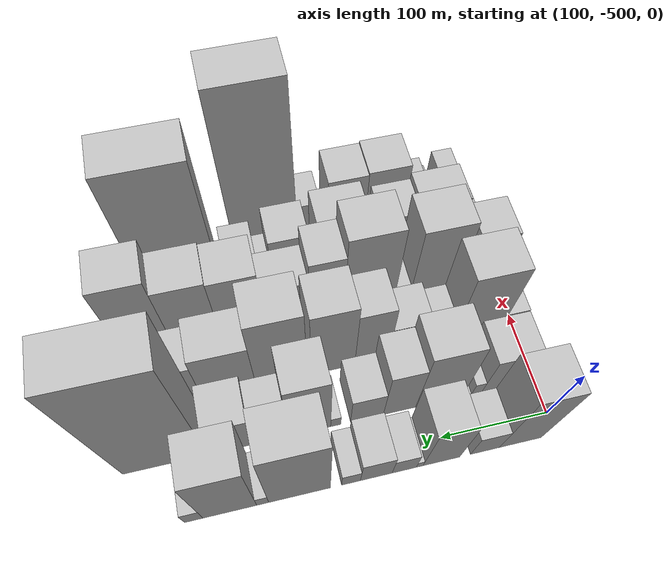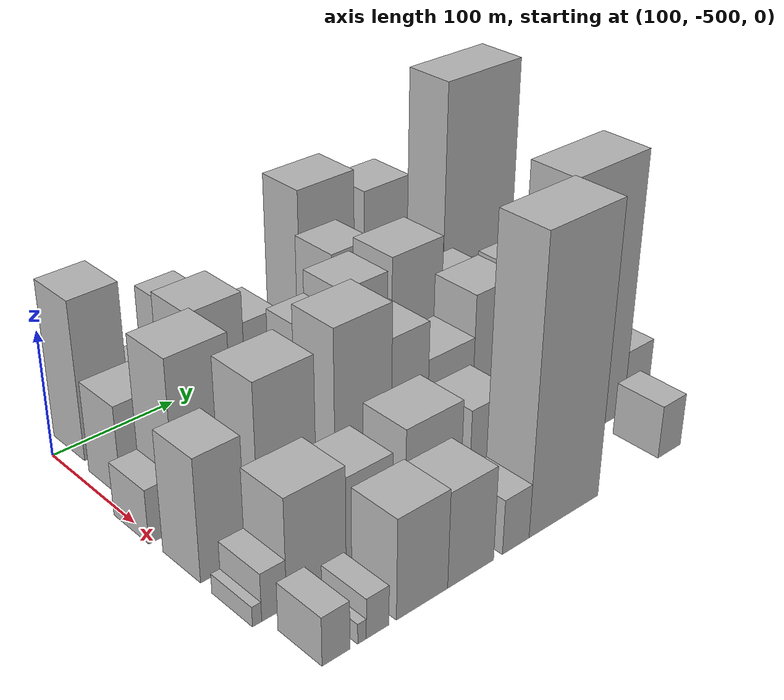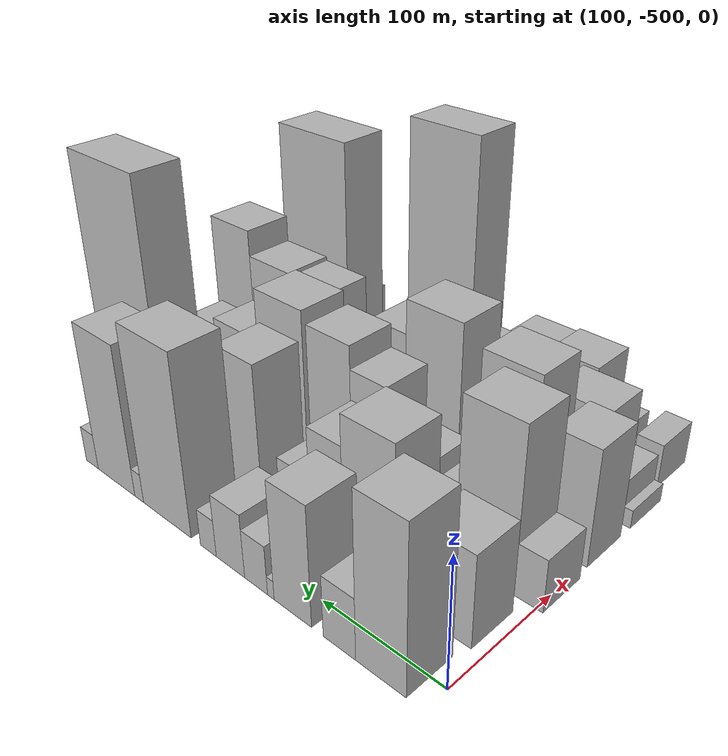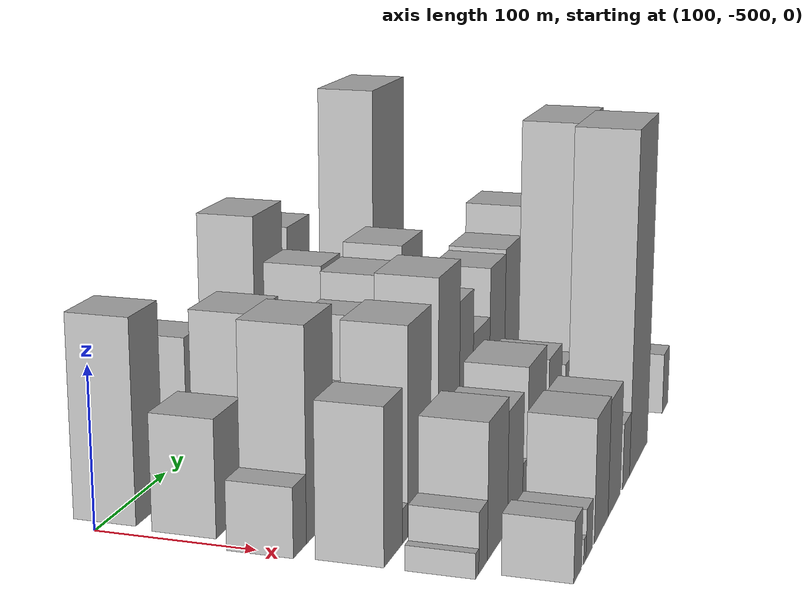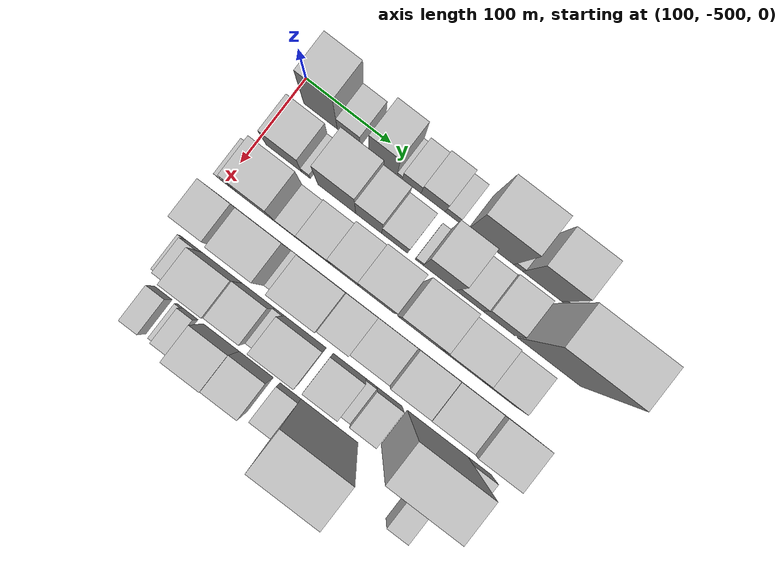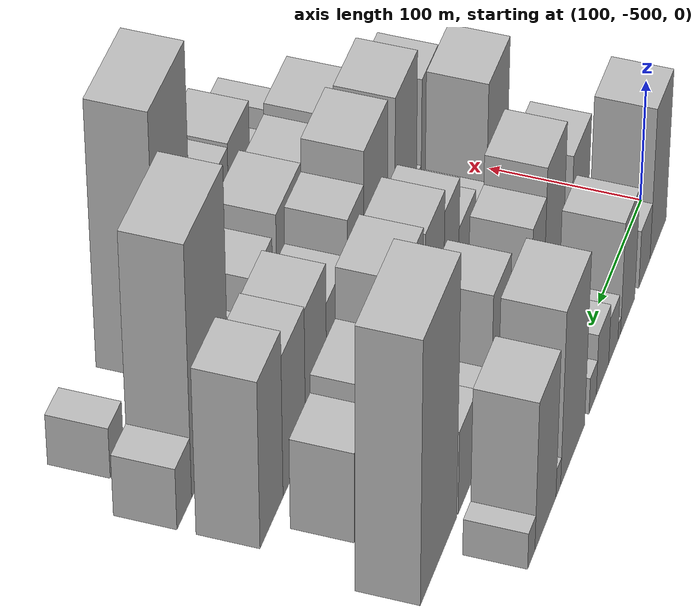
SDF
<sdf version="1.6">
 <world name="default">
  <model name="building_13">
   <static>1</static>
   <pose>100.0000 -467.5035 0 0.000000 0.000000 0.000000</pose>
   <link name="link">
    <pose>0 0 63.00 0 0 0</pose>
    <collision name="collision"><geometry><box><size>40.0000 39.2408 126.0000</size></box></geometry></collision>
    <visual name="visual">
     <cast_shadows>0</cast_shadows>
     <geometry><box><size>40.0000 39.2408 126.0000</size></box></geometry>
     <material>
      <script>
       <uri>model://HANNAS_wall/materials/scripts</uri>
       <uri>model://HANNAS_wall/materials/textures</uri>
       <name>vrc/HANNAS_wall</name>
      </script>
     </material>
    </visual>
   </link>
  </model>
  <model name="building_14">
   <static>1</static>
   <pose>100.0000 -434.4610 0 0.000000 0.000000 0.000000</pose>
   <link name="link">
    <pose>0 0 24.00 0 0 0</pose>
    <collision name="collision"><geometry><box><size>40.0000 26.8443 48.0000</size></box></geometry></collision>
    <visual name="visual">
     <cast_shadows>0</cast_shadows>
     <geometry><box><size>40.0000 26.8443 48.0000</size></box></geometry>
     <material>
      <script>
       <uri>model://HANNAS_wall/materials/scripts</uri>
       <uri>model://HANNAS_wall/materials/textures</uri>
       <name>vrc/HANNAS_wall</name>
      </script>
     </material>
    </visual>
   </link>
  </model>
  <model name="building_15">
   <static>1</static>
   <pose>100.0000 -394.2538 0 0.000000 0.000000 0.000000</pose>
   <link name="link">
    <pose>0 0 46.50 0 0 0</pose>
    <collision name="collision"><geometry><box><size>40.0000 33.5702 93.0000</size></box></geometry></collision>
    <visual name="visual">
     <cast_shadows>0</cast_shadows>
     <geometry><box><size>40.0000 33.5702 93.0000</size></box></geometry>
     <material>
      <script>
       <uri>model://HANNAS_wall/materials/scripts</uri>
       <uri>model://HANNAS_wall/materials/textures</uri>
       <name>vrc/HANNAS_wall</name>
      </script>
     </material>
    </visual>
   </link>
  </model>
  <model name="building_16">
   <static>1</static>
   <pose>100.0000 -374.4187 0 0.000000 0.000000 0.000000</pose>
   <link name="link">
    <pose>0 0 7.50 0 0 0</pose>
    <collision name="collision"><geometry><box><size>40.0000 6.0999 15.0000</size></box></geometry></collision>
    <visual name="visual">
     <cast_shadows>0</cast_shadows>
     <geometry><box><size>40.0000 6.0999 15.0000</size></box></geometry>
     <material>
      <script>
       <uri>model://HANNAS_wall/materials/scripts</uri>
       <uri>model://HANNAS_wall/materials/textures</uri>
       <name>vrc/HANNAS_wall</name>
      </script>
     </material>
    </visual>
   </link>
  </model>
  <model name="building_17">
   <static>1</static>
   <pose>100.0000 -360.4036 0 0.000000 0.000000 0.000000</pose>
   <link name="link">
    <pose>0 0 19.50 0 0 0</pose>
    <collision name="collision"><geometry><box><size>40.0000 21.9302 39.0000</size></box></geometry></collision>
    <visual name="visual">
     <cast_shadows>0</cast_shadows>
     <geometry><box><size>40.0000 21.9302 39.0000</size></box></geometry>
     <material>
      <script>
       <uri>model://HANNAS_wall/materials/scripts</uri>
       <uri>model://HANNAS_wall/materials/textures</uri>
       <name>vrc/HANNAS_wall</name>
      </script>
     </material>
    </visual>
   </link>
  </model>
  <model name="building_18">
   <static>1</static>
   <pose>100.0000 -335.2173 0 0.000000 0.000000 0.000000</pose>
   <link name="link">
    <pose>0 0 25.50 0 0 0</pose>
    <collision name="collision"><geometry><box><size>40.0000 28.4425 51.0000</size></box></geometry></collision>
    <visual name="visual">
     <cast_shadows>0</cast_shadows>
     <geometry><box><size>40.0000 28.4425 51.0000</size></box></geometry>
     <material>
      <script>
       <uri>model://HANNAS_wall/materials/scripts</uri>
       <uri>model://HANNAS_wall/materials/textures</uri>
       <name>vrc/HANNAS_wall</name>
      </script>
     </material>
    </visual>
   </link>
  </model>
  <model name="building_19">
   <static>1</static>
   <pose>100.0000 -312.6675 0 0.000000 0.000000 0.000000</pose>
   <link name="link">
    <pose>0 0 15.00 0 0 0</pose>
    <collision name="collision"><geometry><box><size>40.0000 16.6571 30.0000</size></box></geometry></collision>
    <visual name="visual">
     <cast_shadows>0</cast_shadows>
     <geometry><box><size>40.0000 16.6571 30.0000</size></box></geometry>
     <material>
      <script>
       <uri>model://HANNAS_wall/materials/scripts</uri>
       <uri>model://HANNAS_wall/materials/textures</uri>
       <name>vrc/HANNAS_wall</name>
      </script>
     </material>
    </visual>
   </link>
  </model>
  <model name="building_20">
   <static>1</static>
   <pose>100.0000 -267.3836 0 0.000000 0.000000 0.000000</pose>
   <link name="link">
    <pose>0 0 72.00 0 0 0</pose>
    <collision name="collision"><geometry><box><size>40.0000 53.9107 144.0000</size></box></geometry></collision>
    <visual name="visual">
     <cast_shadows>0</cast_shadows>
     <geometry><box><size>40.0000 53.9107 144.0000</size></box></geometry>
     <material>
      <script>
       <uri>model://HANNAS_wall/materials/scripts</uri>
       <uri>model://HANNAS_wall/materials/textures</uri>
       <name>vrc/HANNAS_wall</name>
      </script>
     </material>
    </visual>
   </link>
  </model>
  <model name="building_21">
   <static>1</static>
   <pose>100.0000 -235.2414 0 0.000000 0.000000 0.000000</pose>
   <link name="link">
    <pose>0 0 12.00 0 0 0</pose>
    <collision name="collision"><geometry><box><size>40.0000 10.3735 24.0000</size></box></geometry></collision>
    <visual name="visual">
     <cast_shadows>0</cast_shadows>
     <geometry><box><size>40.0000 10.3735 24.0000</size></box></geometry>
     <material>
      <script>
       <uri>model://HANNAS_wall/materials/scripts</uri>
       <uri>model://HANNAS_wall/materials/textures</uri>
       <name>vrc/HANNAS_wall</name>
      </script>
     </material>
    </visual>
   </link>
  </model>
  <model name="building_22">
   <static>1</static>
   <pose>100.0000 -207.0619 0 0.000000 0.000000 0.000000</pose>
   <link name="link">
    <pose>0 0 61.50 0 0 0</pose>
    <collision name="collision"><geometry><box><size>40.0000 45.9857 123.0000</size></box></geometry></collision>
    <visual name="visual">
     <cast_shadows>0</cast_shadows>
     <geometry><box><size>40.0000 45.9857 123.0000</size></box></geometry>
     <material>
      <script>
       <uri>model://HANNAS_wall/materials/scripts</uri>
       <uri>model://HANNAS_wall/materials/textures</uri>
       <name>vrc/HANNAS_wall</name>
      </script>
     </material>
    </visual>
   </link>
  </model>
  <model name="building_23">
   <static>1</static>
   <pose>100.0000 -176.2472 0 0.000000 0.000000 0.000000</pose>
   <link name="link">
    <pose>0 0 15.00 0 0 0</pose>
    <collision name="collision"><geometry><box><size>40.0000 15.6436 30.0000</size></box></geometry></collision>
    <visual name="visual">
     <cast_shadows>0</cast_shadows>
     <geometry><box><size>40.0000 15.6436 30.0000</size></box></geometry>
     <material>
      <script>
       <uri>model://HANNAS_wall/materials/scripts</uri>
       <uri>model://HANNAS_wall/materials/textures</uri>
       <name>vrc/HANNAS_wall</name>
      </script>
     </material>
    </visual>
   </link>
  </model>
  <model name="building_67">
   <static>1</static>
   <pose>152.0000 -470.3975 0 0.000000 0.000000 0.000000</pose>
   <link name="link">
    <pose>0 0 36.00 0 0 0</pose>
    <collision name="collision"><geometry><box><size>40.0000 41.8873 72.0000</size></box></geometry></collision>
    <visual name="visual">
     <cast_shadows>0</cast_shadows>
     <geometry><box><size>40.0000 41.8873 72.0000</size></box></geometry>
     <material>
      <script>
       <uri>model://HANNAS_wall/materials/scripts</uri>
       <uri>model://HANNAS_wall/materials/textures</uri>
       <name>vrc/HANNAS_wall</name>
      </script>
     </material>
    </visual>
   </link>
  </model>
  <model name="building_68">
   <static>1</static>
   <pose>152.0000 -444.4953 0 0.000000 0.000000 0.000000</pose>
   <link name="link">
    <pose>0 0 12.00 0 0 0</pose>
    <collision name="collision"><geometry><box><size>40.0000 9.9171 24.0000</size></box></geometry></collision>
    <visual name="visual">
     <cast_shadows>0</cast_shadows>
     <geometry><box><size>40.0000 9.9171 24.0000</size></box></geometry>
     <material>
      <script>
       <uri>model://HANNAS_wall/materials/scripts</uri>
       <uri>model://HANNAS_wall/materials/textures</uri>
       <name>vrc/HANNAS_wall</name>
      </script>
     </material>
    </visual>
   </link>
  </model>
  <model name="building_69">
   <static>1</static>
   <pose>152.0000 -408.3130 0 0.000000 0.000000 0.000000</pose>
   <link name="link">
    <pose>0 0 58.50 0 0 0</pose>
    <collision name="collision"><geometry><box><size>40.0000 44.4476 117.0000</size></box></geometry></collision>
    <visual name="visual">
     <cast_shadows>0</cast_shadows>
     <geometry><box><size>40.0000 44.4476 117.0000</size></box></geometry>
     <material>
      <script>
       <uri>model://HANNAS_wall/materials/scripts</uri>
       <uri>model://HANNAS_wall/materials/textures</uri>
       <name>vrc/HANNAS_wall</name>
      </script>
     </material>
    </visual>
   </link>
  </model>
  <model name="building_70">
   <static>1</static>
   <pose>152.0000 -370.9443 0 0.000000 0.000000 0.000000</pose>
   <link name="link">
    <pose>0 0 46.50 0 0 0</pose>
    <collision name="collision"><geometry><box><size>40.0000 30.2898 93.0000</size></box></geometry></collision>
    <visual name="visual">
     <cast_shadows>0</cast_shadows>
     <geometry><box><size>40.0000 30.2898 93.0000</size></box></geometry>
     <material>
      <script>
       <uri>model://HANNAS_wall/materials/scripts</uri>
       <uri>model://HANNAS_wall/materials/textures</uri>
       <name>vrc/HANNAS_wall</name>
      </script>
     </material>
    </visual>
   </link>
  </model>
  <model name="building_71">
   <static>1</static>
   <pose>152.0000 -340.5869 0 0.000000 0.000000 0.000000</pose>
   <link name="link">
    <pose>0 0 27.00 0 0 0</pose>
    <collision name="collision"><geometry><box><size>40.0000 30.4251 54.0000</size></box></geometry></collision>
    <visual name="visual">
     <cast_shadows>0</cast_shadows>
     <geometry><box><size>40.0000 30.4251 54.0000</size></box></geometry>
     <material>
      <script>
       <uri>model://HANNAS_wall/materials/scripts</uri>
       <uri>model://HANNAS_wall/materials/textures</uri>
       <name>vrc/HANNAS_wall</name>
      </script>
     </material>
    </visual>
   </link>
  </model>
  <model name="building_72">
   <static>1</static>
   <pose>152.0000 -311.6879 0 0.000000 0.000000 0.000000</pose>
   <link name="link">
    <pose>0 0 10.50 0 0 0</pose>
    <collision name="collision"><geometry><box><size>40.0000 9.3727 21.0000</size></box></geometry></collision>
    <visual name="visual">
     <cast_shadows>0</cast_shadows>
     <geometry><box><size>40.0000 9.3727 21.0000</size></box></geometry>
     <material>
      <script>
       <uri>model://HANNAS_wall/materials/scripts</uri>
       <uri>model://HANNAS_wall/materials/textures</uri>
       <name>vrc/HANNAS_wall</name>
      </script>
     </material>
    </visual>
   </link>
  </model>
  <model name="building_73">
   <static>1</static>
   <pose>152.0000 -287.7402 0 0.000000 0.000000 0.000000</pose>
   <link name="link">
    <pose>0 0 58.50 0 0 0</pose>
    <collision name="collision"><geometry><box><size>40.0000 38.5227 117.0000</size></box></geometry></collision>
    <visual name="visual">
     <cast_shadows>0</cast_shadows>
     <geometry><box><size>40.0000 38.5227 117.0000</size></box></geometry>
     <material>
      <script>
       <uri>model://HANNAS_wall/materials/scripts</uri>
       <uri>model://HANNAS_wall/materials/textures</uri>
       <name>vrc/HANNAS_wall</name>
      </script>
     </material>
    </visual>
   </link>
  </model>
  <model name="building_74">
   <static>1</static>
   <pose>152.0000 -252.8528 0 0.000000 0.000000 0.000000</pose>
   <link name="link">
    <pose>0 0 28.50 0 0 0</pose>
    <collision name="collision"><geometry><box><size>40.0000 31.2522 57.0000</size></box></geometry></collision>
    <visual name="visual">
     <cast_shadows>0</cast_shadows>
     <geometry><box><size>40.0000 31.2522 57.0000</size></box></geometry>
     <material>
      <script>
       <uri>model://HANNAS_wall/materials/scripts</uri>
       <uri>model://HANNAS_wall/materials/textures</uri>
       <name>vrc/HANNAS_wall</name>
      </script>
     </material>
    </visual>
   </link>
  </model>
  <model name="building_75">
   <static>1</static>
   <pose>152.0000 -218.3678 0 0.000000 0.000000 0.000000</pose>
   <link name="link">
    <pose>0 0 34.50 0 0 0</pose>
    <collision name="collision"><geometry><box><size>40.0000 37.7178 69.0000</size></box></geometry></collision>
    <visual name="visual">
     <cast_shadows>0</cast_shadows>
     <geometry><box><size>40.0000 37.7178 69.0000</size></box></geometry>
     <material>
      <script>
       <uri>model://HANNAS_wall/materials/scripts</uri>
       <uri>model://HANNAS_wall/materials/textures</uri>
       <name>vrc/HANNAS_wall</name>
      </script>
     </material>
    </visual>
   </link>
  </model>
  <model name="building_76">
   <static>1</static>
   <pose>152.0000 -159.0427 0 0.000000 0.000000 0.000000</pose>
   <link name="link">
    <pose>0 0 108.00 0 0 0</pose>
    <collision name="collision"><geometry><box><size>40.0000 74.9324 216.0000</size></box></geometry></collision>
    <visual name="visual">
     <cast_shadows>0</cast_shadows>
     <geometry><box><size>40.0000 74.9324 216.0000</size></box></geometry>
     <material>
      <script>
       <uri>model://HANNAS_wall/materials/scripts</uri>
       <uri>model://HANNAS_wall/materials/textures</uri>
       <name>vrc/HANNAS_wall</name>
      </script>
     </material>
    </visual>
   </link>
  </model>
  <model name="building_110">
   <static>1</static>
   <pose>204.0000 -494.3942 0 0.000000 0.000000 0.000000</pose>
   <link name="link">
    <pose>0 0 21.00 0 0 0</pose>
    <collision name="collision"><geometry><box><size>40.0000 21.7252 42.0000</size></box></geometry></collision>
    <visual name="visual">
     <cast_shadows>0</cast_shadows>
     <geometry><box><size>40.0000 21.7252 42.0000</size></box></geometry>
     <material>
      <script>
       <uri>model://HANNAS_wall/materials/scripts</uri>
       <uri>model://HANNAS_wall/materials/textures</uri>
       <name>vrc/HANNAS_wall</name>
      </script>
     </material>
    </visual>
   </link>
  </model>
  <model name="building_111">
   <static>1</static>
   <pose>204.0000 -459.8636 0 0.000000 0.000000 0.000000</pose>
   <link name="link">
    <pose>0 0 64.50 0 0 0</pose>
    <collision name="collision"><geometry><box><size>40.0000 47.3360 129.0000</size></box></geometry></collision>
    <visual name="visual">
     <cast_shadows>0</cast_shadows>
     <geometry><box><size>40.0000 47.3360 129.0000</size></box></geometry>
     <material>
      <script>
       <uri>model://HANNAS_wall/materials/scripts</uri>
       <uri>model://HANNAS_wall/materials/textures</uri>
       <name>vrc/HANNAS_wall</name>
      </script>
     </material>
    </visual>
   </link>
  </model>
  <model name="building_112">
   <static>1</static>
   <pose>204.0000 -423.8968 0 0.000000 0.000000 0.000000</pose>
   <link name="link">
    <pose>0 0 24.00 0 0 0</pose>
    <collision name="collision"><geometry><box><size>40.0000 24.5976 48.0000</size></box></geometry></collision>
    <visual name="visual">
     <cast_shadows>0</cast_shadows>
     <geometry><box><size>40.0000 24.5976 48.0000</size></box></geometry>
     <material>
      <script>
       <uri>model://HANNAS_wall/materials/scripts</uri>
       <uri>model://HANNAS_wall/materials/textures</uri>
       <name>vrc/HANNAS_wall</name>
      </script>
     </material>
    </visual>
   </link>
  </model>
  <model name="building_113">
   <static>1</static>
   <pose>204.0000 -393.2177 0 0.000000 0.000000 0.000000</pose>
   <link name="link">
    <pose>0 0 31.50 0 0 0</pose>
    <collision name="collision"><geometry><box><size>40.0000 36.7607 63.0000</size></box></geometry></collision>
    <visual name="visual">
     <cast_shadows>0</cast_shadows>
     <geometry><box><size>40.0000 36.7607 63.0000</size></box></geometry>
     <material>
      <script>
       <uri>model://HANNAS_wall/materials/scripts</uri>
       <uri>model://HANNAS_wall/materials/textures</uri>
       <name>vrc/HANNAS_wall</name>
      </script>
     </material>
    </visual>
   </link>
  </model>
  <model name="building_114">
   <static>1</static>
   <pose>204.0000 -358.6229 0 0.000000 0.000000 0.000000</pose>
   <link name="link">
    <pose>0 0 52.50 0 0 0</pose>
    <collision name="collision"><geometry><box><size>40.0000 32.4288 105.0000</size></box></geometry></collision>
    <visual name="visual">
     <cast_shadows>0</cast_shadows>
     <geometry><box><size>40.0000 32.4288 105.0000</size></box></geometry>
     <material>
      <script>
       <uri>model://HANNAS_wall/materials/scripts</uri>
       <uri>model://HANNAS_wall/materials/textures</uri>
       <name>vrc/HANNAS_wall</name>
      </script>
     </material>
    </visual>
   </link>
  </model>
  <model name="building_115">
   <static>1</static>
   <pose>204.0000 -321.8809 0 0.000000 0.000000 0.000000</pose>
   <link name="link">
    <pose>0 0 61.50 0 0 0</pose>
    <collision name="collision"><geometry><box><size>40.0000 41.0553 123.0000</size></box></geometry></collision>
    <visual name="visual">
     <cast_shadows>0</cast_shadows>
     <geometry><box><size>40.0000 41.0553 123.0000</size></box></geometry>
     <material>
      <script>
       <uri>model://HANNAS_wall/materials/scripts</uri>
       <uri>model://HANNAS_wall/materials/textures</uri>
       <name>vrc/HANNAS_wall</name>
      </script>
     </material>
    </visual>
   </link>
  </model>
  <model name="building_116">
   <static>1</static>
   <pose>204.0000 -273.3096 0 0.000000 0.000000 0.000000</pose>
   <link name="link">
    <pose>0 0 66.00 0 0 0</pose>
    <collision name="collision"><geometry><box><size>40.0000 48.0872 132.0000</size></box></geometry></collision>
    <visual name="visual">
     <cast_shadows>0</cast_shadows>
     <geometry><box><size>40.0000 48.0872 132.0000</size></box></geometry>
     <material>
      <script>
       <uri>model://HANNAS_wall/materials/scripts</uri>
       <uri>model://HANNAS_wall/materials/textures</uri>
       <name>vrc/HANNAS_wall</name>
      </script>
     </material>
    </visual>
   </link>
  </model>
  <model name="building_117">
   <static>1</static>
   <pose>204.0000 -224.2974 0 0.000000 0.000000 0.000000</pose>
   <link name="link">
    <pose>0 0 45.00 0 0 0</pose>
    <collision name="collision"><geometry><box><size>40.0000 49.9373 90.0000</size></box></geometry></collision>
    <visual name="visual">
     <cast_shadows>0</cast_shadows>
     <geometry><box><size>40.0000 49.9373 90.0000</size></box></geometry>
     <material>
      <script>
       <uri>model://HANNAS_wall/materials/scripts</uri>
       <uri>model://HANNAS_wall/materials/textures</uri>
       <name>vrc/HANNAS_wall</name>
      </script>
     </material>
    </visual>
   </link>
  </model>
  <model name="building_118">
   <static>1</static>
   <pose>204.0000 -179.0073 0 0.000000 0.000000 0.000000</pose>
   <link name="link">
    <pose>0 0 37.50 0 0 0</pose>
    <collision name="collision"><geometry><box><size>40.0000 40.6428 75.0000</size></box></geometry></collision>
    <visual name="visual">
     <cast_shadows>0</cast_shadows>
     <geometry><box><size>40.0000 40.6428 75.0000</size></box></geometry>
     <material>
      <script>
       <uri>model://HANNAS_wall/materials/scripts</uri>
       <uri>model://HANNAS_wall/materials/textures</uri>
       <name>vrc/HANNAS_wall</name>
      </script>
     </material>
    </visual>
   </link>
  </model>
  <model name="building_161">
   <static>1</static>
   <pose>256.0000 -485.3179 0 0.000000 0.000000 0.000000</pose>
   <link name="link">
    <pose>0 0 46.50 0 0 0</pose>
    <collision name="collision"><geometry><box><size>40.0000 35.0915 93.0000</size></box></geometry></collision>
    <visual name="visual">
     <cast_shadows>0</cast_shadows>
     <geometry><box><size>40.0000 35.0915 93.0000</size></box></geometry>
     <material>
      <script>
       <uri>model://HANNAS_wall/materials/scripts</uri>
       <uri>model://HANNAS_wall/materials/textures</uri>
       <name>vrc/HANNAS_wall</name>
      </script>
     </material>
    </visual>
   </link>
  </model>
  <model name="building_162">
   <static>1</static>
   <pose>256.0000 -462.5232 0 0.000000 0.000000 0.000000</pose>
   <link name="link">
    <pose>0 0 10.50 0 0 0</pose>
    <collision name="collision"><geometry><box><size>40.0000 10.4977 21.0000</size></box></geometry></collision>
    <visual name="visual">
     <cast_shadows>0</cast_shadows>
     <geometry><box><size>40.0000 10.4977 21.0000</size></box></geometry>
     <material>
      <script>
       <uri>model://HANNAS_wall/materials/scripts</uri>
       <uri>model://HANNAS_wall/materials/textures</uri>
       <name>vrc/HANNAS_wall</name>
      </script>
     </material>
    </visual>
   </link>
  </model>
  <model name="building_163">
   <static>1</static>
   <pose>256.0000 -433.6808 0 0.000000 0.000000 0.000000</pose>
   <link name="link">
    <pose>0 0 63.00 0 0 0</pose>
    <collision name="collision"><geometry><box><size>40.0000 47.1872 126.0000</size></box></geometry></collision>
    <visual name="visual">
     <cast_shadows>0</cast_shadows>
     <geometry><box><size>40.0000 47.1872 126.0000</size></box></geometry>
     <material>
      <script>
       <uri>model://HANNAS_wall/materials/scripts</uri>
       <uri>model://HANNAS_wall/materials/textures</uri>
       <name>vrc/HANNAS_wall</name>
      </script>
     </material>
    </visual>
   </link>
  </model>
  <model name="building_164">
   <static>1</static>
   <pose>256.0000 -402.1538 0 0.000000 0.000000 0.000000</pose>
   <link name="link">
    <pose>0 0 15.00 0 0 0</pose>
    <collision name="collision"><geometry><box><size>40.0000 15.8668 30.0000</size></box></geometry></collision>
    <visual name="visual">
     <cast_shadows>0</cast_shadows>
     <geometry><box><size>40.0000 15.8668 30.0000</size></box></geometry>
     <material>
      <script>
       <uri>model://HANNAS_wall/materials/scripts</uri>
       <uri>model://HANNAS_wall/materials/textures</uri>
       <name>vrc/HANNAS_wall</name>
      </script>
     </material>
    </visual>
   </link>
  </model>
  <model name="building_165">
   <static>1</static>
   <pose>256.0000 -369.6494 0 0.000000 0.000000 0.000000</pose>
   <link name="link">
    <pose>0 0 69.00 0 0 0</pose>
    <collision name="collision"><geometry><box><size>40.0000 49.1420 138.0000</size></box></geometry></collision>
    <visual name="visual">
     <cast_shadows>0</cast_shadows>
     <geometry><box><size>40.0000 49.1420 138.0000</size></box></geometry>
     <material>
      <script>
       <uri>model://HANNAS_wall/materials/scripts</uri>
       <uri>model://HANNAS_wall/materials/textures</uri>
       <name>vrc/HANNAS_wall</name>
      </script>
     </material>
    </visual>
   </link>
  </model>
  <model name="building_166">
   <static>1</static>
   <pose>256.0000 -328.4116 0 0.000000 0.000000 0.000000</pose>
   <link name="link">
    <pose>0 0 55.50 0 0 0</pose>
    <collision name="collision"><geometry><box><size>40.0000 33.3336 111.0000</size></box></geometry></collision>
    <visual name="visual">
     <cast_shadows>0</cast_shadows>
     <geometry><box><size>40.0000 33.3336 111.0000</size></box></geometry>
     <material>
      <script>
       <uri>model://HANNAS_wall/materials/scripts</uri>
       <uri>model://HANNAS_wall/materials/textures</uri>
       <name>vrc/HANNAS_wall</name>
      </script>
     </material>
    </visual>
   </link>
  </model>
  <model name="building_167">
   <static>1</static>
   <pose>256.0000 -290.1464 0 0.000000 0.000000 0.000000</pose>
   <link name="link">
    <pose>0 0 40.50 0 0 0</pose>
    <collision name="collision"><geometry><box><size>40.0000 43.1969 81.0000</size></box></geometry></collision>
    <visual name="visual">
     <cast_shadows>0</cast_shadows>
     <geometry><box><size>40.0000 43.1969 81.0000</size></box></geometry>
     <material>
      <script>
       <uri>model://HANNAS_wall/materials/scripts</uri>
       <uri>model://HANNAS_wall/materials/textures</uri>
       <name>vrc/HANNAS_wall</name>
      </script>
     </material>
    </visual>
   </link>
  </model>
  <model name="building_168">
   <static>1</static>
   <pose>256.0000 -247.4318 0 0.000000 0.000000 0.000000</pose>
   <link name="link">
    <pose>0 0 57.00 0 0 0</pose>
    <collision name="collision"><geometry><box><size>40.0000 42.2322 114.0000</size></box></geometry></collision>
    <visual name="visual">
     <cast_shadows>0</cast_shadows>
     <geometry><box><size>40.0000 42.2322 114.0000</size></box></geometry>
     <material>
      <script>
       <uri>model://HANNAS_wall/materials/scripts</uri>
       <uri>model://HANNAS_wall/materials/textures</uri>
       <name>vrc/HANNAS_wall</name>
      </script>
     </material>
    </visual>
   </link>
  </model>
  <model name="building_169">
   <static>1</static>
   <pose>256.0000 -204.2041 0 0.000000 0.000000 0.000000</pose>
   <link name="link">
    <pose>0 0 58.50 0 0 0</pose>
    <collision name="collision"><geometry><box><size>40.0000 44.2233 117.0000</size></box></geometry></collision>
    <visual name="visual">
     <cast_shadows>0</cast_shadows>
     <geometry><box><size>40.0000 44.2233 117.0000</size></box></geometry>
     <material>
      <script>
       <uri>model://HANNAS_wall/materials/scripts</uri>
       <uri>model://HANNAS_wall/materials/textures</uri>
       <name>vrc/HANNAS_wall</name>
      </script>
     </material>
    </visual>
   </link>
  </model>
  <model name="building_170">
   <static>1</static>
   <pose>256.0000 -159.8182 0 0.000000 0.000000 0.000000</pose>
   <link name="link">
    <pose>0 0 69.00 0 0 0</pose>
    <collision name="collision"><geometry><box><size>40.0000 44.5485 138.0000</size></box></geometry></collision>
    <visual name="visual">
     <cast_shadows>0</cast_shadows>
     <geometry><box><size>40.0000 44.5485 138.0000</size></box></geometry>
     <material>
      <script>
       <uri>model://HANNAS_wall/materials/scripts</uri>
       <uri>model://HANNAS_wall/materials/textures</uri>
       <name>vrc/HANNAS_wall</name>
      </script>
     </material>
    </visual>
   </link>
  </model>
  <model name="building_209">
   <static>1</static>
   <pose>308.0000 -499.7778 0 0.000000 0.000000 0.000000</pose>
   <link name="link">
    <pose>0 0 7.50 0 0 0</pose>
    <collision name="collision"><geometry><box><size>40.0000 6.8972 15.0000</size></box></geometry></collision>
    <visual name="visual">
     <cast_shadows>0</cast_shadows>
     <geometry><box><size>40.0000 6.8972 15.0000</size></box></geometry>
     <material>
      <script>
       <uri>model://HANNAS_wall/materials/scripts</uri>
       <uri>model://HANNAS_wall/materials/textures</uri>
       <name>vrc/HANNAS_wall</name>
      </script>
     </material>
    </visual>
   </link>
  </model>
  <model name="building_210">
   <static>1</static>
   <pose>308.0000 -486.8607 0 0.000000 0.000000 0.000000</pose>
   <link name="link">
    <pose>0 0 18.00 0 0 0</pose>
    <collision name="collision"><geometry><box><size>40.0000 18.9369 36.0000</size></box></geometry></collision>
    <visual name="visual">
     <cast_shadows>0</cast_shadows>
     <geometry><box><size>40.0000 18.9369 36.0000</size></box></geometry>
     <material>
      <script>
       <uri>model://HANNAS_wall/materials/scripts</uri>
       <uri>model://HANNAS_wall/materials/textures</uri>
       <name>vrc/HANNAS_wall</name>
      </script>
     </material>
    </visual>
   </link>
  </model>
  <model name="building_211">
   <static>1</static>
   <pose>308.0000 -453.8253 0 0.000000 0.000000 0.000000</pose>
   <link name="link">
    <pose>0 0 40.50 0 0 0</pose>
    <collision name="collision"><geometry><box><size>40.0000 47.1340 81.0000</size></box></geometry></collision>
    <visual name="visual">
     <cast_shadows>0</cast_shadows>
     <geometry><box><size>40.0000 47.1340 81.0000</size></box></geometry>
     <material>
      <script>
       <uri>model://HANNAS_wall/materials/scripts</uri>
       <uri>model://HANNAS_wall/materials/textures</uri>
       <name>vrc/HANNAS_wall</name>
      </script>
     </material>
    </visual>
   </link>
  </model>
  <model name="building_212">
   <static>1</static>
   <pose>308.0000 -411.0640 0 0.000000 0.000000 0.000000</pose>
   <link name="link">
    <pose>0 0 36.00 0 0 0</pose>
    <collision name="collision"><geometry><box><size>40.0000 38.3885 72.0000</size></box></geometry></collision>
    <visual name="visual">
     <cast_shadows>0</cast_shadows>
     <geometry><box><size>40.0000 38.3885 72.0000</size></box></geometry>
     <material>
      <script>
       <uri>model://HANNAS_wall/materials/scripts</uri>
       <uri>model://HANNAS_wall/materials/textures</uri>
       <name>vrc/HANNAS_wall</name>
      </script>
     </material>
    </visual>
   </link>
  </model>
  <model name="building_213">
   <static>1</static>
   <pose>308.0000 -386.3541 0 0.000000 0.000000 0.000000</pose>
   <link name="link">
    <pose>0 0 13.50 0 0 0</pose>
    <collision name="collision"><geometry><box><size>40.0000 11.0312 27.0000</size></box></geometry></collision>
    <visual name="visual">
     <cast_shadows>0</cast_shadows>
     <geometry><box><size>40.0000 11.0312 27.0000</size></box></geometry>
     <material>
      <script>
       <uri>model://HANNAS_wall/materials/scripts</uri>
       <uri>model://HANNAS_wall/materials/textures</uri>
       <name>vrc/HANNAS_wall</name>
      </script>
     </material>
    </visual>
   </link>
  </model>
  <model name="building_214">
   <static>1</static>
   <pose>308.0000 -356.1017 0 0.000000 0.000000 0.000000</pose>
   <link name="link">
    <pose>0 0 42.00 0 0 0</pose>
    <collision name="collision"><geometry><box><size>40.0000 49.4737 84.0000</size></box></geometry></collision>
    <visual name="visual">
     <cast_shadows>0</cast_shadows>
     <geometry><box><size>40.0000 49.4737 84.0000</size></box></geometry>
     <material>
      <script>
       <uri>model://HANNAS_wall/materials/scripts</uri>
       <uri>model://HANNAS_wall/materials/textures</uri>
       <name>vrc/HANNAS_wall</name>
      </script>
     </material>
    </visual>
   </link>
  </model>
  <model name="building_215">
   <static>1</static>
   <pose>308.0000 -304.1128 0 0.000000 0.000000 0.000000</pose>
   <link name="link">
    <pose>0 0 36.00 0 0 0</pose>
    <collision name="collision"><geometry><box><size>40.0000 38.5041 72.0000</size></box></geometry></collision>
    <visual name="visual">
     <cast_shadows>0</cast_shadows>
     <geometry><box><size>40.0000 38.5041 72.0000</size></box></geometry>
     <material>
      <script>
       <uri>model://HANNAS_wall/materials/scripts</uri>
       <uri>model://HANNAS_wall/materials/textures</uri>
       <name>vrc/HANNAS_wall</name>
      </script>
     </material>
    </visual>
   </link>
  </model>
  <model name="building_216">
   <static>1</static>
   <pose>308.0000 -278.5442 0 0.000000 0.000000 0.000000</pose>
   <link name="link">
    <pose>0 0 13.50 0 0 0</pose>
    <collision name="collision"><geometry><box><size>40.0000 12.6331 27.0000</size></box></geometry></collision>
    <visual name="visual">
     <cast_shadows>0</cast_shadows>
     <geometry><box><size>40.0000 12.6331 27.0000</size></box></geometry>
     <material>
      <script>
       <uri>model://HANNAS_wall/materials/scripts</uri>
       <uri>model://HANNAS_wall/materials/textures</uri>
       <name>vrc/HANNAS_wall</name>
      </script>
     </material>
    </visual>
   </link>
  </model>
  <model name="building_217">
   <static>1</static>
   <pose>308.0000 -257.3085 0 0.000000 0.000000 0.000000</pose>
   <link name="link">
    <pose>0 0 27.00 0 0 0</pose>
    <collision name="collision"><geometry><box><size>40.0000 29.8383 54.0000</size></box></geometry></collision>
    <visual name="visual">
     <cast_shadows>0</cast_shadows>
     <geometry><box><size>40.0000 29.8383 54.0000</size></box></geometry>
     <material>
      <script>
       <uri>model://HANNAS_wall/materials/scripts</uri>
       <uri>model://HANNAS_wall/materials/textures</uri>
       <name>vrc/HANNAS_wall</name>
      </script>
     </material>
    </visual>
   </link>
  </model>
  <model name="building_218">
   <static>1</static>
   <pose>308.0000 -200.7749 0 0.000000 0.000000 0.000000</pose>
   <link name="link">
    <pose>0 0 103.50 0 0 0</pose>
    <collision name="collision"><geometry><box><size>40.0000 71.2289 207.0000</size></box></geometry></collision>
    <visual name="visual">
     <cast_shadows>0</cast_shadows>
     <geometry><box><size>40.0000 71.2289 207.0000</size></box></geometry>
     <material>
      <script>
       <uri>model://HANNAS_wall/materials/scripts</uri>
       <uri>model://HANNAS_wall/materials/textures</uri>
       <name>vrc/HANNAS_wall</name>
      </script>
     </material>
    </visual>
   </link>
  </model>
  <model name="building_219">
   <static>1</static>
   <pose>308.0000 -151.4434 0 0.000000 0.000000 0.000000</pose>
   <link name="link">
    <pose>0 0 25.50 0 0 0</pose>
    <collision name="collision"><geometry><box><size>40.0000 27.4340 51.0000</size></box></geometry></collision>
    <visual name="visual">
     <cast_shadows>0</cast_shadows>
     <geometry><box><size>40.0000 27.4340 51.0000</size></box></geometry>
     <material>
      <script>
       <uri>model://HANNAS_wall/materials/scripts</uri>
       <uri>model://HANNAS_wall/materials/textures</uri>
       <name>vrc/HANNAS_wall</name>
      </script>
     </material>
    </visual>
   </link>
  </model>
  <model name="building_263">
   <static>1</static>
   <pose>360.0000 -483.1957 0 0.000000 0.000000 0.000000</pose>
   <link name="link">
    <pose>0 0 18.00 0 0 0</pose>
    <collision name="collision"><geometry><box><size>40.0000 21.0449 36.0000</size></box></geometry></collision>
    <visual name="visual">
     <cast_shadows>0</cast_shadows>
     <geometry><box><size>40.0000 21.0449 36.0000</size></box></geometry>
     <material>
      <script>
       <uri>model://HANNAS_wall/materials/scripts</uri>
       <uri>model://HANNAS_wall/materials/textures</uri>
       <name>vrc/HANNAS_wall</name>
      </script>
     </material>
    </visual>
   </link>
  </model>
  <model name="building_264">
   <static>1</static>
   <pose>360.0000 -463.3351 0 0.000000 0.000000 0.000000</pose>
   <link name="link">
    <pose>0 0 7.50 0 0 0</pose>
    <collision name="collision"><geometry><box><size>40.0000 6.6763 15.0000</size></box></geometry></collision>
    <visual name="visual">
     <cast_shadows>0</cast_shadows>
     <geometry><box><size>40.0000 6.6763 15.0000</size></box></geometry>
     <material>
      <script>
       <uri>model://HANNAS_wall/materials/scripts</uri>
       <uri>model://HANNAS_wall/materials/textures</uri>
       <name>vrc/HANNAS_wall</name>
      </script>
     </material>
    </visual>
   </link>
  </model>
  <model name="building_265">
   <static>1</static>
   <pose>360.0000 -451.0975 0 0.000000 0.000000 0.000000</pose>
   <link name="link">
    <pose>0 0 15.00 0 0 0</pose>
    <collision name="collision"><geometry><box><size>40.0000 17.7987 30.0000</size></box></geometry></collision>
    <visual name="visual">
     <cast_shadows>0</cast_shadows>
     <geometry><box><size>40.0000 17.7987 30.0000</size></box></geometry>
     <material>
      <script>
       <uri>model://HANNAS_wall/materials/scripts</uri>
       <uri>model://HANNAS_wall/materials/textures</uri>
       <name>vrc/HANNAS_wall</name>
      </script>
     </material>
    </visual>
   </link>
  </model>
  <model name="building_266">
   <static>1</static>
   <pose>360.0000 -414.9766 0 0.000000 0.000000 0.000000</pose>
   <link name="link">
    <pose>0 0 37.50 0 0 0</pose>
    <collision name="collision"><geometry><box><size>40.0000 42.4431 75.0000</size></box></geometry></collision>
    <visual name="visual">
     <cast_shadows>0</cast_shadows>
     <geometry><box><size>40.0000 42.4431 75.0000</size></box></geometry>
     <material>
      <script>
       <uri>model://HANNAS_wall/materials/scripts</uri>
       <uri>model://HANNAS_wall/materials/textures</uri>
       <name>vrc/HANNAS_wall</name>
      </script>
     </material>
    </visual>
   </link>
  </model>
  <model name="building_267">
   <static>1</static>
   <pose>360.0000 -373.7132 0 0.000000 0.000000 0.000000</pose>
   <link name="link">
    <pose>0 0 36.00 0 0 0</pose>
    <collision name="collision"><geometry><box><size>40.0000 40.0836 72.0000</size></box></geometry></collision>
    <visual name="visual">
     <cast_shadows>0</cast_shadows>
     <geometry><box><size>40.0000 40.0836 72.0000</size></box></geometry>
     <material>
      <script>
       <uri>model://HANNAS_wall/materials/scripts</uri>
       <uri>model://HANNAS_wall/materials/textures</uri>
       <name>vrc/HANNAS_wall</name>
      </script>
     </material>
    </visual>
   </link>
  </model>
  <model name="building_268">
   <static>1</static>
   <pose>360.0000 -333.4076 0 0.000000 0.000000 0.000000</pose>
   <link name="link">
    <pose>0 0 21.00 0 0 0</pose>
    <collision name="collision"><geometry><box><size>40.0000 24.5277 42.0000</size></box></geometry></collision>
    <visual name="visual">
     <cast_shadows>0</cast_shadows>
     <geometry><box><size>40.0000 24.5277 42.0000</size></box></geometry>
     <material>
      <script>
       <uri>model://HANNAS_wall/materials/scripts</uri>
       <uri>model://HANNAS_wall/materials/textures</uri>
       <name>vrc/HANNAS_wall</name>
      </script>
     </material>
    </visual>
   </link>
  </model>
  <model name="building_269">
   <static>1</static>
   <pose>360.0000 -287.7301 0 0.000000 0.000000 0.000000</pose>
   <link name="link">
    <pose>0 0 109.50 0 0 0</pose>
    <collision name="collision"><geometry><box><size>40.0000 66.8273 219.0000</size></box></geometry></collision>
    <visual name="visual">
     <cast_shadows>0</cast_shadows>
     <geometry><box><size>40.0000 66.8273 219.0000</size></box></geometry>
     <material>
      <script>
       <uri>model://HANNAS_wall/materials/scripts</uri>
       <uri>model://HANNAS_wall/materials/textures</uri>
       <name>vrc/HANNAS_wall</name>
      </script>
     </material>
    </visual>
   </link>
  </model>
  <model name="building_270">
   <static>1</static>
   <pose>360.0000 -178.6130 0 0.000000 0.000000 0.000000</pose>
   <link name="link">
    <pose>0 0 21.00 0 0 0</pose>
    <collision name="collision"><geometry><box><size>40.0000 24.4690 42.0000</size></box></geometry></collision>
    <visual name="visual">
     <cast_shadows>0</cast_shadows>
     <geometry><box><size>40.0000 24.4690 42.0000</size></box></geometry>
     <material>
      <script>
       <uri>model://HANNAS_wall/materials/scripts</uri>
       <uri>model://HANNAS_wall/materials/textures</uri>
       <name>vrc/HANNAS_wall</name>
      </script>
     </material>
    </visual>
   </link>
  </model>
 </world>
</sdf>
